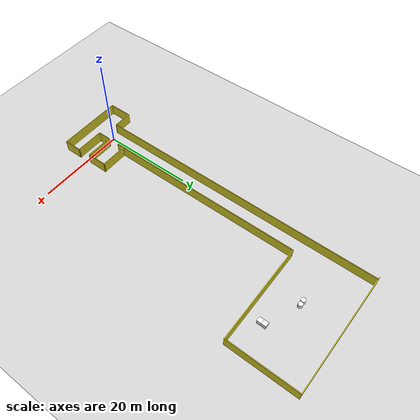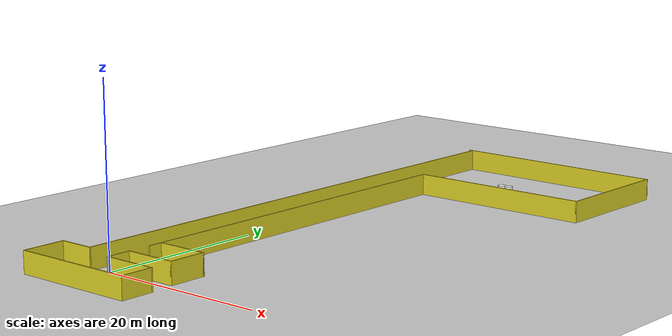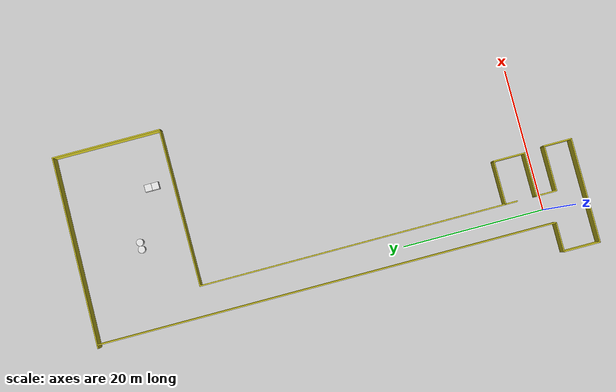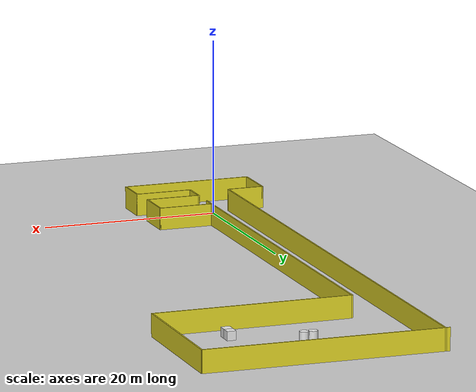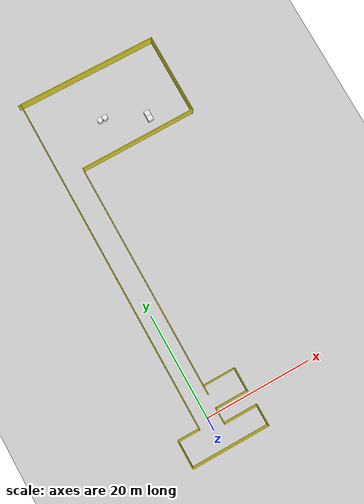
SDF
<sdf version="1.7">
 <world name="default">
  <light name="sun" type="directional">
   <pose>0 0 10 0 -0 0</pose>
   <diffuse>0.8 0.8 0.8 1</diffuse>
   <specular>0.2 0.2 0.2 1</specular>
   <attenuation>
    <range>1000</range>
    <constant>0.9</constant>
    <linear>0.01</linear>
    <quadratic>0.001</quadratic>
   </attenuation>
   <direction>-0.5 0.1 -0.9</direction>
   <spot><inner_angle>0</inner_angle><outer_angle>0</outer_angle><falloff>0</falloff></spot>
  </light>
  <model name="ground_plane">
   <static>1</static>
   <link name="link">
    <collision name="collision">
     <geometry><plane><normal>0 0 1</normal><size>500 500</size></plane></geometry>
     <surface>
      <contact><collide_bitmask>65535</collide_bitmask></contact>
      <friction><ode><mu>100</mu><mu2>50</mu2></ode></friction>
     </surface>
    </collision>
    <visual name="visual">
     <cast_shadows>0</cast_shadows>
     <geometry><plane><normal>0 0 1</normal><size>500 500</size></plane></geometry>
     <material>
      <script><uri>file://media/materials/scripts/gazebo.material</uri><name>Gazebo/Grey</name></script>
     </material>
    </visual>
   </link>
  </model>
  <gravity>0 0 -9.8</gravity>
  <magnetic_field>6e-06 2.3e-05 -4.2e-05</magnetic_field>
  <atmosphere type="adiabatic"/>
  <physics type="ode">
   <max_step_size>0.001</max_step_size>
   <real_time_factor>1</real_time_factor>
   <real_time_update_rate>1000</real_time_update_rate>
  </physics>
  <scene><ambient>0.4 0.4 0.4 1</ambient><background>0.7 0.7 0.7 1</background><shadows>1</shadows></scene>
  <spherical_coordinates>
   <surface_model>EARTH_WGS84</surface_model>
   <latitude_deg>0</latitude_deg>
   <longitude_deg>0</longitude_deg>
   <elevation>0</elevation>
   <heading_deg>0</heading_deg>
  </spherical_coordinates>
  <model name="corridor3">
   <pose>9 29 0 0 -0 0</pose>
   <link name="Wall_0">
    <collision name="Wall_0_Collision">
     <geometry><box><size>14.75 0.15 2.5</size></box></geometry>
     <pose>0 0 1.25 0 -0 0</pose>
    </collision>
    <visual name="Wall_0_Visual">
     <pose>0 0 1.25 0 -0 0</pose>
     <geometry><box><size>14.75 0.15 2.5</size></box></geometry>
     <material>
      <script><uri>file://media/materials/scripts/gazebo.material</uri><name>Gazebo/Yellow</name></script>
      <ambient>1 1 1 1</ambient>
     </material>
     <meta><layer>0</layer></meta>
    </visual>
    <pose>-7.86403 -34.8343 0 0 -0 0</pose>
   </link>
   <link name="Wall_10">
    <collision name="Wall_10_Collision">
     <geometry><box><size>6.25 0.15 2.5</size></box></geometry>
     <pose>0 0 1.25 0 -0 0</pose>
    </collision>
    <visual name="Wall_10_Visual">
     <pose>0 0 1.25 0 -0 0</pose>
     <geometry><box><size>6.25 0.15 2.5</size></box></geometry>
     <material>
      <script><uri>file://media/materials/scripts/gazebo.material</uri><name>Gazebo/Yellow</name></script>
      <ambient>1 1 1 1</ambient>
     </material>
     <meta><layer>0</layer></meta>
    </visual>
    <pose>-3.86403 -28.1343 0 0 -0 0</pose>
   </link>
   <link name="Wall_11">
    <collision name="Wall_11_Collision">
     <geometry><box><size>4.5 0.15 2.5</size></box></geometry>
     <pose>0 0 1.25 0 -0 0</pose>
    </collision>
    <visual name="Wall_11_Visual">
     <pose>0 0 1.25 0 -0 0</pose>
     <geometry><box><size>4.5 0.15 2.5</size></box></geometry>
     <material>
      <script><uri>file://media/materials/scripts/gazebo.material</uri><name>Gazebo/Yellow</name></script>
      <ambient>1 1 1 1</ambient>
     </material>
     <meta><layer>0</layer></meta>
    </visual>
    <pose>-0.814026 -25.9593 0 0 -0 1.5708</pose>
   </link>
   <link name="Wall_30">
    <collision name="Wall_30_Collision">
     <geometry><box><size>6.25 0.15 2.5</size></box></geometry>
     <pose>0 0 1.25 0 -0 0</pose>
    </collision>
    <visual name="Wall_30_Visual">
     <pose>0 0 1.25 0 -0 0</pose>
     <geometry><box><size>6.25 0.15 2.5</size></box></geometry>
     <material>
      <script><uri>file://media/materials/scripts/gazebo.material</uri><name>Gazebo/Yellow</name></script>
      <ambient>1 1 1 1</ambient>
     </material>
     <meta><layer>0</layer></meta>
    </visual>
    <pose>-3.86403 -23.7843 0 0 -0 3.14159</pose>
   </link>
   <link name="Wall_31">
    <collision name="Wall_31_Collision">
     <geometry><box><size>43.25 0.15 2.5</size></box></geometry>
     <pose>0 0 1.25 0 -0 0</pose>
    </collision>
    <visual name="Wall_31_Visual">
     <pose>0 0 1.25 0 -0 0</pose>
     <geometry><box><size>43.25 0.15 2.5</size></box></geometry>
     <material>
      <script><uri>file://media/materials/scripts/gazebo.material</uri><name>Gazebo/Yellow</name></script>
      <ambient>1 1 1 1</ambient>
     </material>
     <meta><layer>0</layer></meta>
    </visual>
    <pose>-6.91403 -2.23428 0 0 -0 1.5708</pose>
   </link>
   <link name="Wall_32">
    <collision name="Wall_32_Collision">
     <geometry><box><size>22.25 0.15 2.5</size></box></geometry>
     <pose>0 0 1.25 0 -0 0</pose>
    </collision>
    <visual name="Wall_32_Visual">
     <pose>0 0 1.25 0 -0 0</pose>
     <geometry><box><size>22.25 0.15 2.5</size></box></geometry>
     <material>
      <script><uri>file://media/materials/scripts/gazebo.material</uri><name>Gazebo/Yellow</name></script>
      <ambient>1 1 1 1</ambient>
     </material>
     <meta><layer>0</layer></meta>
    </visual>
    <pose>4.13597 19.3157 0 0 -0 0</pose>
   </link>
   <link name="Wall_33">
    <collision name="Wall_33_Collision">
     <geometry><box><size>15.25 0.15 2.5</size></box></geometry>
     <pose>0 0 1.25 0 -0 0</pose>
    </collision>
    <visual name="Wall_33_Visual">
     <pose>0 0 1.25 0 -0 0</pose>
     <geometry><box><size>15.25 0.15 2.5</size></box></geometry>
     <material>
      <script><uri>file://media/materials/scripts/gazebo.material</uri><name>Gazebo/Yellow</name></script>
      <ambient>1 1 1 1</ambient>
     </material>
     <meta><layer>0</layer></meta>
    </visual>
    <pose>15.186 26.8657 0 0 -0 1.5708</pose>
   </link>
   <link name="Wall_34">
    <collision name="Wall_34_Collision">
     <geometry><box><size>26.8294 0.15 2.5</size></box></geometry>
     <pose>0 0 1.25 0 -0 0</pose>
    </collision>
    <visual name="Wall_34_Visual">
     <pose>0 0 1.25 0 -0 0</pose>
     <geometry><box><size>26.8294 0.15 2.5</size></box></geometry>
     <material>
      <script><uri>file://media/materials/scripts/gazebo.material</uri><name>Gazebo/Yellow</name></script>
      <ambient>1 1 1 1</ambient>
     </material>
     <meta><layer>0</layer></meta>
    </visual>
    <pose>1.84793 34.6244 0 0 -0 3.12595</pose>
   </link>
   <link name="Wall_35">
    <collision name="Wall_35_Collision">
     <geometry><box><size>64.75 0.15 2.5</size></box></geometry>
     <pose>0 0 1.25 0 -0 0</pose>
    </collision>
    <visual name="Wall_35_Visual">
     <pose>0 0 1.25 0 -0 0</pose>
     <geometry><box><size>64.75 0.15 2.5</size></box></geometry>
     <material>
      <script><uri>file://media/materials/scripts/gazebo.material</uri><name>Gazebo/Yellow</name></script>
      <ambient>1 1 1 1</ambient>
     </material>
     <meta><layer>0</layer></meta>
    </visual>
    <pose>-11.0799 2.53311 0 0 -0 -1.57102</pose>
   </link>
   <link name="Wall_45">
    <collision name="Wall_45_Collision">
     <geometry><box><size>4.25 0.15 2.5</size></box></geometry>
     <pose>0 0 1.25 0 -0 0</pose>
    </collision>
    <visual name="Wall_45_Visual">
     <pose>0 0 1.25 0 -0 0</pose>
     <geometry><box><size>4.25 0.15 2.5</size></box></geometry>
     <material>
      <script><uri>file://media/materials/scripts/gazebo.material</uri><name>Gazebo/Yellow</name></script>
      <ambient>1 1 1 1</ambient>
     </material>
     <meta><layer>0</layer></meta>
    </visual>
    <pose>-13.1371 -29.7669 0 0 -0 3.14159</pose>
   </link>
   <link name="Wall_46">
    <collision name="Wall_46_Collision">
     <geometry><box><size>5.2 0.15 2.5</size></box></geometry>
     <pose>0 0 1.25 0 -0 0</pose>
    </collision>
    <visual name="Wall_46_Visual">
     <pose>0 0 1.25 0 -0 0</pose>
     <geometry><box><size>5.2 0.15 2.5</size></box></geometry>
     <material>
      <script><uri>file://media/materials/scripts/gazebo.material</uri><name>Gazebo/Yellow</name></script>
      <ambient>1 1 1 1</ambient>
     </material>
     <meta><layer>0</layer></meta>
    </visual>
    <pose>-15.1871 -32.2919 0 0 -0 -1.5708</pose>
   </link>
   <link name="Wall_48">
    <collision name="Wall_48_Collision">
     <geometry><box><size>1.75 0.15 2.5</size></box></geometry>
     <pose>0 0 1.25 0 -0 0</pose>
    </collision>
    <visual name="Wall_48_Visual">
     <pose>0 0 1.25 0 -0 0</pose>
     <geometry><box><size>1.75 0.15 2.5</size></box></geometry>
     <material>
      <script><uri>file://media/materials/scripts/gazebo.material</uri><name>Gazebo/Yellow</name></script>
      <ambient>1 1 1 1</ambient>
     </material>
     <meta><layer>0</layer></meta>
    </visual>
    <pose>-6.91403 -24.5843 0 0 -0 -1.5708</pose>
   </link>
   <link name="Wall_5">
    <collision name="Wall_5_Collision">
     <geometry><box><size>4 0.15 2.5</size></box></geometry>
     <pose>0 0 1.25 0 -0 0</pose>
    </collision>
    <visual name="Wall_5_Visual">
     <pose>0 0 1.25 0 -0 0</pose>
     <geometry><box><size>4 0.15 2.5</size></box></geometry>
     <material>
      <script><uri>file://media/materials/scripts/gazebo.material</uri><name>Gazebo/Yellow</name></script>
      <ambient>1 1 1 1</ambient>
     </material>
     <meta><layer>0</layer></meta>
    </visual>
    <pose>-0.564026 -32.9093 0 0 -0 1.5708</pose>
   </link>
   <link name="Wall_7">
    <collision name="Wall_7_Collision">
     <geometry><box><size>6.5 0.15 2.5</size></box></geometry>
     <pose>0 0 1.25 0 -0 0</pose>
    </collision>
    <visual name="Wall_7_Visual">
     <pose>0 0 1.25 0 -0 0</pose>
     <geometry><box><size>6.5 0.15 2.5</size></box></geometry>
     <material>
      <script><uri>file://media/materials/scripts/gazebo.material</uri><name>Gazebo/Yellow</name></script>
      <ambient>1 1 1 1</ambient>
     </material>
     <meta><layer>0</layer></meta>
    </visual>
    <pose>-3.73903 -30.9843 0 0 -0 3.14159</pose>
   </link>
   <link name="Wall_9">
    <collision name="Wall_9_Collision">
     <geometry><box><size>3 0.15 2.5</size></box></geometry>
     <pose>0 0 1.25 0 -0 0</pose>
    </collision>
    <visual name="Wall_9_Visual">
     <pose>0 0 1.25 0 -0 0</pose>
     <geometry><box><size>3 0.15 2.5</size></box></geometry>
     <material>
      <script><uri>file://media/materials/scripts/gazebo.material</uri><name>Gazebo/Yellow</name></script>
      <ambient>1 1 1 1</ambient>
     </material>
     <meta><layer>0</layer></meta>
    </visual>
    <pose>-6.91403 -29.5593 0 0 -0 1.5708</pose>
   </link>
   <static>1</static>
  </model>
  <model name="unit_cylinder">
   <pose>9 55 0.499991 -2e-06 -2e-06 -0.000388</pose>
   <link name="link">
    <inertial>
     <mass>1</mass>
     <inertia><ixx>0.145833</ixx><ixy>0</ixy><ixz>0</ixz><iyy>0.145833</iyy><iyz>0</iyz><izz>0.125</izz></inertia>
    </inertial>
    <collision name="collision">
     <geometry><cylinder><radius>0.5</radius><length>1</length></cylinder></geometry>
    </collision>
    <visual name="visual">
     <geometry><cylinder><radius>0.5</radius><length>1</length></cylinder></geometry>
     <material>
      <script><name>Gazebo/White</name><uri>file://media/materials/scripts/gazebo.material</uri></script>
     </material>
    </visual>
   </link>
  </model>
  <model name="unit_cylinder_0">
   <pose>10 55 0.499992 -3e-06 -4e-06 0.000827</pose>
   <link name="link">
    <inertial>
     <mass>1</mass>
     <inertia><ixx>0.145833</ixx><ixy>0</ixy><ixz>0</ixz><iyy>0.145833</iyy><iyz>0</iyz><izz>0.125</izz></inertia>
    </inertial>
    <collision name="collision">
     <geometry><cylinder><radius>0.5</radius><length>1</length></cylinder></geometry>
    </collision>
    <visual name="visual">
     <geometry><cylinder><radius>0.5</radius><length>1</length></cylinder></geometry>
     <material>
      <script><name>Gazebo/White</name><uri>file://media/materials/scripts/gazebo.material</uri></script>
     </material>
    </visual>
   </link>
  </model>
  <model name="unit_box">
   <pose>17 52 0.499995 1e-05 0 7.4e-05</pose>
   <link name="link">
    <inertial>
     <mass>1</mass>
     <inertia>
      <ixx>0.166667</ixx>
      <ixy>0</ixy>
      <ixz>0</ixz>
      <iyy>0.166667</iyy>
      <iyz>0</iyz>
      <izz>0.166667</izz>
     </inertia>
    </inertial>
    <collision name="collision"><geometry><box><size>1 1 1</size></box></geometry></collision>
    <visual name="visual">
     <geometry><box><size>1 1 1</size></box></geometry>
     <material>
      <script><name>Gazebo/White</name><uri>file://media/materials/scripts/gazebo.material</uri></script>
     </material>
    </visual>
   </link>
  </model>
  <model name="unit_box_0">
   <pose>17 51 0.5 0 -0 6.9e-05</pose>
   <link name="link">
    <inertial>
     <mass>1</mass>
     <inertia>
      <ixx>0.166667</ixx>
      <ixy>0</ixy>
      <ixz>0</ixz>
      <iyy>0.166667</iyy>
      <iyz>0</iyz>
      <izz>0.166667</izz>
     </inertia>
    </inertial>
    <collision name="collision"><geometry><box><size>1 1 1</size></box></geometry></collision>
    <visual name="visual">
     <geometry><box><size>1 1 1</size></box></geometry>
     <material>
      <script><name>Gazebo/White</name><uri>file://media/materials/scripts/gazebo.material</uri></script>
     </material>
    </visual>
   </link>
  </model>
 </world>
</sdf>
